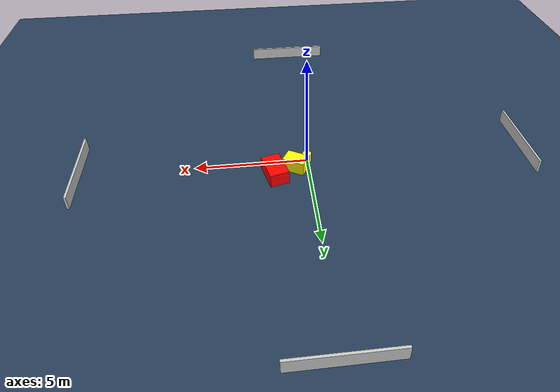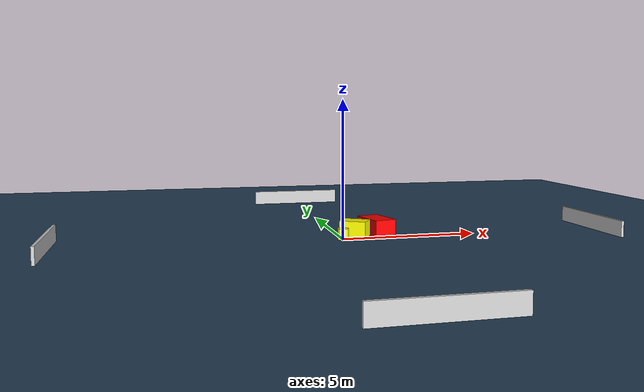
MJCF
<?xml version="1.0" ?>
<mujoco model="generated_environment">
  <option timestep="0.01" integrator="RK4" cone="elliptic"/>
  <default>
    <geom density="1"/>
  </default>
  <asset>
    <texture builtin="gradient" height="3072" name="skybox" rgb1="0.3 0.5 0.7" rgb2="0 0 0" type="skybox" width="512"/>
    <texture builtin="checker" height="300" name="groundplane" rgb1="0.2 0.3 0.4" rgb2="0.1 0.2 0.3" type="2d" width="300"/>
    <material name="groundplane" reflectance="0.2" texrepeat="5 5" texture="groundplane"/>
  </asset>
  <worldbody>
    <light dir="0 0 -1" directional="true" pos="0 0 1.5"/>
    <geom condim="3" friction="0.5 0.005 0.001" material="groundplane" name="floor" pos="0 0 0" size="0 0 0.05" type="plane"/>
    <body name="walls">
      <geom name="wall_1" condim="4" pos="-10.0 0.0 0.3" rgba="0.800000011920929 0.800000011920929 0.800000011920929 1.0" size="0.05 2.0 0.3" type="box"/>
      <geom name="wall_2" condim="4" pos="10.0 0.0 0.3" rgba="0.800000011920929 0.800000011920929 0.800000011920929 1.0" size="0.05 2.0 0.3" type="box"/>
      <geom name="wall_3" condim="4" pos="0.0 -10.0 0.3" rgba="0.800000011920929 0.800000011920929 0.800000011920929 1.0" size="2.0 0.05 0.3" type="box"/>
      <geom name="wall_4" condim="4" pos="0.0 10.0 0.3" rgba="0.800000011920929 0.800000011920929 0.800000011920929 1.0" size="2.0 0.05 0.3" type="box"/>
    </body>
    <body name="robot">
      <joint name="joint_x" type="slide" pos="0 0 0" axis="1 0 0"/>
      <joint name="joint_y" type="slide" pos="0 0 0" axis="0 1 0"/>
      <geom name="robot" type="cylinder" pos="0.0 0.0 0.2" size="0.2 0.2 0.0" mass="5.0" friction="1.0 0.005 0.0001" condim="4" rgba="1.0 1.0 0.0 1.0"/>
    </body>
    <body name="obstacle_1_movable">
      <geom name="obstacle_1_movable" condim="4" pos="0.5512922349830457 0.49160332422784825 0.3" euler="0 0 239.878212225926" friction="0.0 0.005 0.001" rgba="1.0 1.0 0.0 1.0" size="0.34526640564982886 0.49537970763196487 0.3" type="box" mass="0.1"/>
      <joint type="free"/>
    </body>
    <body name="obstacle_2_static">
      <geom name="obstacle_2_static" condim="4" pos="1.5006723545303962 0.8771900273945845 0.3" euler="0 0 104.43415561535603" friction="0.0 0.005 0.001" rgba="1.0 0.0 0.0 1.0" size="0.6905196004780991 0.4188355611590802 0.3" type="box"/>
    </body>
  </worldbody>
  <actuator>
    <motor name="actuator_x" joint="joint_x" gear="1" ctrlrange="-1 1"/>
    <motor name="actuator_y" joint="joint_y" gear="1" ctrlrange="-1 1"/>
  </actuator>
</mujoco>
